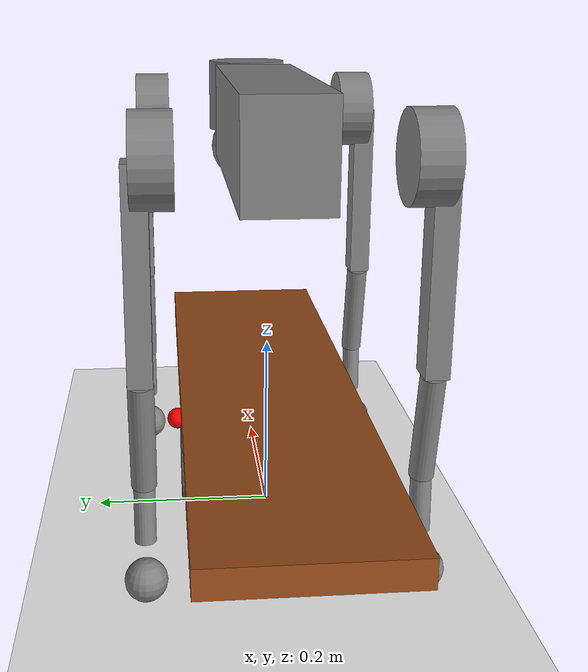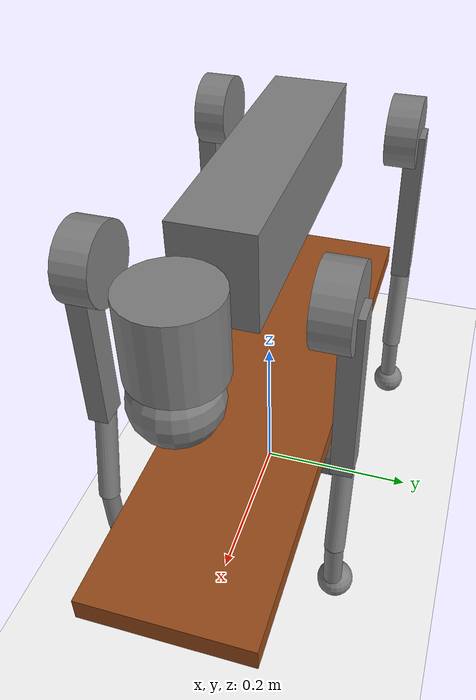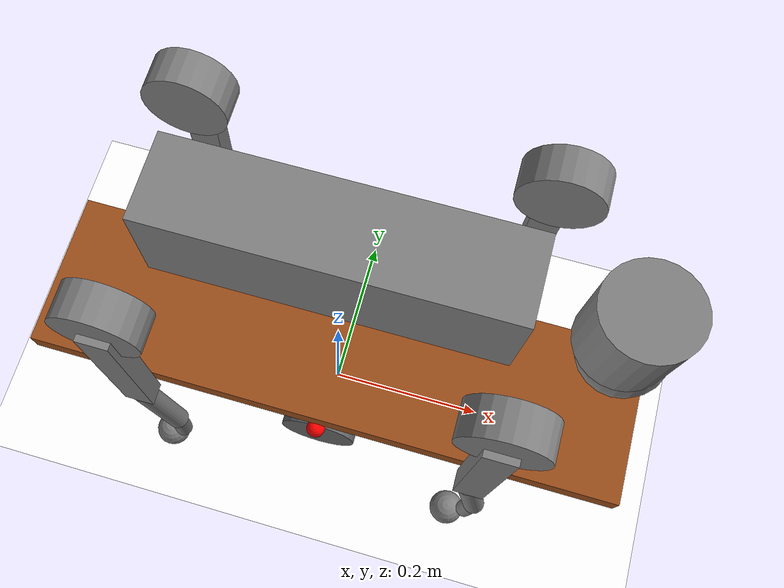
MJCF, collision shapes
<mujoco model="go2 bongo handstand scene">
  <!-- Go2 FIRST so robot qpos occupies indices 0-18 -->
  <include file="unitree_go2/go2.xml"/>
  <include file="bongo_board.xml"/>

  <statistic center="0 0 0.3" extent="1.0" meansize="0.04"/>

  <visual>
    <headlight diffuse=".8 .8 .8" ambient=".2 .2 .2" specular="1 1 1"/>
    <rgba force="1 0 0 1"/>
    <global azimuth="120" elevation="-20" offwidth="3840" offheight="2160"/>
    <map force="0.01"/>
    <scale forcewidth="0.3" contactwidth="0.5" contactheight="0.2"/>
    <quality shadowsize="8192"/>
  </visual>

  <asset>
    <texture type="skybox" builtin="gradient" rgb1="1 1 1" rgb2="1 1 1"
      width="800" height="800"/>
    <texture type="2d" name="groundplane" builtin="checker" mark="edge"
      rgb1="1 1 1" rgb2="1 1 1" markrgb="0 0 0" width="300" height="300"/>
    <material name="groundplane" texture="groundplane" texuniform="true"
      texrepeat="5 5" reflectance="0"/>
  </asset>

  <worldbody>
    <geom name="floor" size="0 0 0.01" type="plane" material="groundplane"
      contype="1" conaffinity="0" priority="1" friction="0.6" condim="3"/>
  </worldbody>

  <sensor>
    <!-- Go2 IMU sensors (same as go2_warp_scene_flat.xml) -->
    <gyro site="imu" name="gyro"/>
    <accelerometer site="imu" name="accelerometer"/>
    <framelinvel objtype="site" objname="imu" name="global_linvel"/>
    <frameangvel objtype="site" objname="imu" name="global_angvel"/>
    <velocimeter site="imu" name="local_linvel"/>
    <framezaxis objtype="site" objname="imu" name="upvector"/>
    <framexaxis objtype="site" objname="imu" name="forwardvector"/>

    <!-- Per-foot position sensors -->
    <framepos objtype="site" objname="FL_foot" name="FL_pos"
      reftype="site" refname="imu"/>
    <framepos objtype="site" objname="FR_foot" name="FR_pos"
      reftype="site" refname="imu"/>
    <framepos objtype="site" objname="RL_foot" name="RL_pos"
      reftype="site" refname="imu"/>
    <framepos objtype="site" objname="RR_foot" name="RR_pos"
      reftype="site" refname="imu"/>

    <!-- Per-foot linear velocity sensors -->
    <framelinvel objtype="site" objname="FL_foot" name="FL_global_linvel"/>
    <framelinvel objtype="site" objname="FR_foot" name="FR_global_linvel"/>
    <framelinvel objtype="site" objname="RL_foot" name="RL_global_linvel"/>
    <framelinvel objtype="site" objname="RR_foot" name="RR_global_linvel"/>

    <!-- Floor contact sensors (for rear legs if they touch ground) -->
    <contact name="FL_floor_found" geom1="FL" geom2="floor"
      reduce="mindist" num="1" data="found"/>
    <contact name="FR_floor_found" geom1="FR" geom2="floor"
      reduce="mindist" num="1" data="found"/>
    <contact name="RL_floor_found" geom1="RL" geom2="floor"
      reduce="mindist" num="1" data="found"/>
    <contact name="RR_floor_found" geom1="RR" geom2="floor"
      reduce="mindist" num="1" data="found"/>

    <!-- Board-floor contact (board edge touching ground = fail) -->
    <contact name="board_floor_found" geom1="board_top" geom2="floor"
      reduce="mindist" num="1" data="found"/>

    <!-- Torso-floor and torso-board contacts (head touching anything = fail) -->
    <contact name="torso_box_floor" geom1="torso_box" geom2="floor"
      reduce="mindist" num="1" data="found"/>
    <contact name="torso_cyl_floor" geom1="torso_cyl" geom2="floor"
      reduce="mindist" num="1" data="found"/>
    <contact name="torso_nose_floor" geom1="torso_nose" geom2="floor"
      reduce="mindist" num="1" data="found"/>
    <contact name="torso_box_board" geom1="torso_box" geom2="board_top"
      reduce="mindist" num="1" data="found"/>
    <contact name="torso_cyl_board" geom1="torso_cyl" geom2="board_top"
      reduce="mindist" num="1" data="found"/>
    <contact name="torso_nose_board" geom1="torso_nose" geom2="board_top"
      reduce="mindist" num="1" data="found"/>

    <!-- Front leg arm/calf on board = fail (only foot tips allowed) -->
    <contact name="FL_hip_board" geom1="FL_hip_col" geom2="board_top"
      reduce="mindist" num="1" data="found"/>
    <contact name="FL_thigh_board" geom1="FL_thigh_col" geom2="board_top"
      reduce="mindist" num="1" data="found"/>
    <contact name="FL_calf_upper_board" geom1="FL_calf_upper" geom2="board_top"
      reduce="mindist" num="1" data="found"/>
    <contact name="FL_calf_lower_board" geom1="FL_calf_lower" geom2="board_top"
      reduce="mindist" num="1" data="found"/>
    <contact name="FR_hip_board" geom1="FR_hip_col" geom2="board_top"
      reduce="mindist" num="1" data="found"/>
    <contact name="FR_thigh_board" geom1="FR_thigh_col" geom2="board_top"
      reduce="mindist" num="1" data="found"/>
    <contact name="FR_calf_upper_board" geom1="FR_calf_upper" geom2="board_top"
      reduce="mindist" num="1" data="found"/>
    <contact name="FR_calf_lower_board" geom1="FR_calf_lower" geom2="board_top"
      reduce="mindist" num="1" data="found"/>

    <!-- Front foot contact with BOARD (not floor) -->
    <contact name="FL_board_found" geom1="FL" geom2="board_top"
      reduce="mindist" num="1" data="found"/>
    <contact name="FR_board_found" geom1="FR" geom2="board_top"
      reduce="mindist" num="1" data="found"/>
  </sensor>

  <!-- Explicit contact pairs for per-pair friction DR.
       These bypass MuJoCo's max-combine rule — friction is used directly. -->
  <contact>
    <pair geom1="FL" geom2="board_top" condim="3"
          friction="0.8 0.8 0.005 0.001 0.001"/>
    <pair geom1="FR" geom2="board_top" condim="3"
          friction="0.8 0.8 0.005 0.001 0.001"/>
  </contact>

  <keyframe>
    <key name="handstand"
      qpos="0 0 0.597062 0.470531 -0.527826 0.527826 0.470531
            0.493386 -0.859650 -1.867154 -0.493386 -0.859650 -1.867154
            0.090111 1.547200 -2.039923 -0.090111 1.547200 -2.039923
            0 0 0.1318 1 0 0 0
            0 0"
      ctrl="0.493386 -0.859650 -1.867154 -0.493386 -0.859650 -1.867154
            0.090111 1.547200 -2.039923 -0.090111 1.547200 -2.039923"/>
  </keyframe>
</mujoco>

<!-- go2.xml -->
<mujoco model="go2">
  <compiler angle="radian" meshdir="assets" autolimits="true" />

  <option cone="elliptic" impratio="100" />

  <default>
    <default class="go2">
      <geom friction="0.4" margin="0.001" condim="1"/>
      <joint axis="0 1 0" damping="0.1" armature="0.01" frictionloss="0.2"/>
      <motor ctrlrange="-23.7 23.7"/>
      <default class="abduction">
        <joint axis="1 0 0" range="-1.0472 1.0472"/>
      </default>
      <default class="hip">
        <default class="front_hip">
          <joint range="-1.5708 3.4907"/>
        </default>
        <default class="back_hip">
          <joint range="-0.5236 4.5379"/>
        </default>
      </default>
      <default class="knee">
        <joint range="-2.7227 -0.83776"/>
        <motor ctrlrange="-45.43 45.43"/>
      </default>
      <default class="visual">
        <geom type="mesh" contype="0" conaffinity="0" group="2"/>
      </default>
      <default class="collision">
        <geom group="3"/>
        <default class="foot">
          <geom size="0.022" pos="-0.002 0 -0.213" priority="1" condim="6"
            friction="0.4 0.02 0.01"/>
        </default>
      </default>
    </default>
  </default>

  <asset>
    <material name="metal" rgba=".9 .95 .95 1" />
    <material name="black" rgba="0 0 0 1" />
    <material name="white" rgba="1 1 1 1" />
    <material name="gray" rgba="0.671705 0.692426 0.774270 1" />

    <mesh file="base_0.obj" />
    <mesh file="base_1.obj" />
    <mesh file="base_2.obj" />
    <mesh file="base_3.obj" />
    <mesh file="base_4.obj" />
    <mesh file="hip_0.obj" />
    <mesh file="hip_1.obj" />
    <mesh file="thigh_0.obj" />
    <mesh file="thigh_1.obj" />
    <mesh file="thigh_mirror_0.obj" />
    <mesh file="thigh_mirror_1.obj" />
    <mesh file="calf_0.obj" />
    <mesh file="calf_1.obj" />
    <mesh file="calf_mirror_0.obj" />
    <mesh file="calf_mirror_1.obj" />
    <mesh file="foot.obj" />
  </asset>

  <worldbody>
    <body name="base_link" pos="0 0 0.445" childclass="go2">
      <inertial pos="0.021112 0 -0.005366" quat="-0.000543471 0.713435 -0.00173769 0.700719"
        mass="6.921"
        diaginertia="0.107027 0.0980771 0.0244531" />
      <freejoint />
      <geom mesh="base_0" material="black" class="visual" />
      <geom mesh="base_1" material="black" class="visual" />
      <geom mesh="base_2" material="black" class="visual" />
      <geom mesh="base_3" material="white" class="visual" />
      <geom mesh="base_4" material="gray" class="visual" />
      <geom name="torso_box" size="0.1881 0.04675 0.057" type="box" class="collision" />
      <geom name="torso_cyl" size="0.05 0.045" pos="0.285 0 0.01" type="cylinder" class="collision" />
      <geom name="torso_nose" size="0.047" pos="0.293 0 -0.06" class="collision" />
      <site name="imu" pos="-0.02557 0 0.04232" />
      <body name="FL_hip" pos="0.1934 0.0465 0">
        <inertial pos="-0.0054 0.00194 -0.000105" quat="0.497014 0.499245 0.505462 0.498237"
          mass="0.678"
          diaginertia="0.00088403 0.000596003 0.000479967" />
        <joint name="FL_hip_joint" class="abduction" />
        <geom mesh="hip_0" material="metal" class="visual" />
        <geom mesh="hip_1" material="gray" class="visual" />
        <geom name="FL_hip_col" size="0.046 0.02" pos="0 0.08 0" quat="1 1 0 0" type="cylinder" class="collision" />
        <body name="FL_thigh" pos="0 0.0955 0">
          <inertial pos="-0.00374 -0.0223 -0.0327" quat="0.829533 0.0847635 -0.0200632 0.551623"
            mass="1.152"
            diaginertia="0.00594973 0.00584149 0.000878787" />
          <joint name="FL_thigh_joint" class="front_hip" />
          <geom mesh="thigh_0" material="metal" class="visual" />
          <geom mesh="thigh_1" material="gray" class="visual" />
          <geom name="FL_thigh_col" size="0.1065 0.01225 0.017" pos="0 0 -0.1065" quat="0.707107 0 0.707107 0"
            type="box" class="collision" />
          <body name="FL_calf" pos="0 0 -0.213">
            <inertial pos="0.00629595 -0.000622121 -0.141417"
              quat="0.710672 0.00154099 -0.00450087 0.703508"
              mass="0.241352" diaginertia="0.0014901 0.00146356 5.31397e-05" />
            <joint name="FL_calf_joint" class="knee" />
            <geom mesh="calf_0" material="gray" class="visual" />
            <geom mesh="calf_1" material="black" class="visual" />
            <geom name="FL_calf_upper" size="0.012 0.06" pos="0.008 0 -0.06" quat="0.994493 0 -0.104807 0"
              type="cylinder" class="collision" />
            <geom name="FL_calf_lower" size="0.011 0.0325" pos="0.02 0 -0.148" quat="0.999688 0 0.0249974 0"
              type="cylinder" class="collision" />
            <geom pos="0 0 -0.213" mesh="foot" class="visual" material="black" />
            <geom name="FL" class="foot" />
            <body name="FL_foot" pos="0 0 -0.213" />
            <site name="FL_foot" pos="-0.002 0 -0.213" group="1"/>
          </body>
        </body>
      </body>
      <body name="FR_hip" pos="0.1934 -0.0465 0">
        <inertial pos="-0.0054 -0.00194 -0.000105" quat="0.498237 0.505462 0.499245 0.497014"
          mass="0.678"
          diaginertia="0.00088403 0.000596003 0.000479967" />
        <joint name="FR_hip_joint" class="abduction" />
        <geom mesh="hip_0" material="metal" class="visual" quat="4.63268e-05 1 0 0" />
        <geom mesh="hip_1" material="gray" class="visual" quat="4.63268e-05 1 0 0" />
        <geom name="FR_hip_col" size="0.046 0.02" pos="0 -0.08 0" quat="0.707107 0.707107 0 0" type="cylinder"
          class="collision" />
        <body name="FR_thigh" pos="0 -0.0955 0">
          <inertial pos="-0.00374 0.0223 -0.0327" quat="0.551623 -0.0200632 0.0847635 0.829533"
            mass="1.152"
            diaginertia="0.00594973 0.00584149 0.000878787" />
          <joint name="FR_thigh_joint" class="front_hip" />
          <geom mesh="thigh_mirror_0" material="metal" class="visual" />
          <geom mesh="thigh_mirror_1" material="gray" class="visual" />
          <geom name="FR_thigh_col" size="0.1065 0.01225 0.017" pos="0 0 -0.1065" quat="0.707107 0 0.707107 0"
            type="box" class="collision" />
          <body name="FR_calf" pos="0 0 -0.213">
            <inertial pos="0.00629595 0.000622121 -0.141417"
              quat="0.703508 -0.00450087 0.00154099 0.710672"
              mass="0.241352" diaginertia="0.0014901 0.00146356 5.31397e-05" />
            <joint name="FR_calf_joint" class="knee" />
            <geom mesh="calf_mirror_0" material="gray" class="visual" />
            <geom mesh="calf_mirror_1" material="black" class="visual" />
            <geom name="FR_calf_upper" size="0.013 0.06" pos="0.01 0 -0.06" quat="0.995004 0 -0.0998334 0"
              type="cylinder" class="collision" />
            <geom name="FR_calf_lower" size="0.011 0.0325" pos="0.02 0 -0.148" quat="0.999688 0 0.0249974 0"
              type="cylinder" class="collision" />
            <geom pos="0 0 -0.213" mesh="foot" class="visual" material="black" />
            <geom name="FR" class="foot" />
            <body name="FR_foot" pos="0 0 -0.213" />
            <site name="FR_foot" pos="-0.002 0 -0.213" group="1"/>
          </body>
        </body>
      </body>
      <body name="RL_hip" pos="-0.1934 0.0465 0">
        <inertial pos="0.0054 0.00194 -0.000105" quat="0.505462 0.498237 0.497014 0.499245"
          mass="0.678"
          diaginertia="0.00088403 0.000596003 0.000479967" />
        <joint name="RL_hip_joint" class="abduction" />
        <geom mesh="hip_0" material="metal" class="visual" quat="4.63268e-05 0 1 0" />
        <geom mesh="hip_1" material="gray" class="visual" quat="4.63268e-05 0 1 0" />
        <geom size="0.046 0.02" pos="0 0.08 0" quat="0.707107 0.707107 0 0" type="cylinder"
          class="collision" />
        <body name="RL_thigh" pos="0 0.0955 0">
          <inertial pos="-0.00374 -0.0223 -0.0327" quat="0.829533 0.0847635 -0.0200632 0.551623"
            mass="1.152"
            diaginertia="0.00594973 0.00584149 0.000878787" />
          <joint name="RL_thigh_joint" class="back_hip" />
          <geom mesh="thigh_0" material="metal" class="visual" />
          <geom mesh="thigh_1" material="gray" class="visual" />
          <geom size="0.1065 0.01225 0.017" pos="0 0 -0.1065" quat="0.707107 0 0.707107 0"
            type="box" class="collision" />
          <body name="RL_calf" pos="0 0 -0.213">
            <inertial pos="0.00629595 -0.000622121 -0.141417"
              quat="0.710672 0.00154099 -0.00450087 0.703508"
              mass="0.241352" diaginertia="0.0014901 0.00146356 5.31397e-05" />
            <joint name="RL_calf_joint" class="knee" />
            <geom mesh="calf_0" material="gray" class="visual" />
            <geom mesh="calf_1" material="black" class="visual" />
            <geom size="0.013 0.06" pos="0.01 0 -0.06" quat="0.995004 0 -0.0998334 0"
              type="cylinder" class="collision" />
            <geom size="0.011 0.0325" pos="0.02 0 -0.148" quat="0.999688 0 0.0249974 0"
              type="cylinder" class="collision" />
            <geom pos="0 0 -0.213" mesh="foot" class="visual" material="black" />
            <geom name="RL" class="foot" />
            <body name="RL_foot" pos="0 0 -0.213" />
            <site name="RL_foot" pos="-0.002 0 -0.213" group="1"/>
          </body>
        </body>
      </body>
      <body name="RR_hip" pos="-0.1934 -0.0465 0">
        <inertial pos="0.0054 -0.00194 -0.000105" quat="0.499245 0.497014 0.498237 0.505462"
          mass="0.678"
          diaginertia="0.00088403 0.000596003 0.000479967" />
        <joint name="RR_hip_joint" class="abduction" />
        <geom mesh="hip_0" material="metal" class="visual"
          quat="2.14617e-09 4.63268e-05 4.63268e-05 -1" />
        <geom mesh="hip_1" material="gray" class="visual"
          quat="2.14617e-09 4.63268e-05 4.63268e-05 -1" />
        <geom size="0.046 0.02" pos="0 -0.08 0" quat="0.707107 0.707107 0 0" type="cylinder"
          class="collision" />
        <body name="RR_thigh" pos="0 -0.0955 0">
          <inertial pos="-0.00374 0.0223 -0.0327" quat="0.551623 -0.0200632 0.0847635 0.829533"
            mass="1.152"
            diaginertia="0.00594973 0.00584149 0.000878787" />
          <joint name="RR_thigh_joint" class="back_hip" />
          <geom mesh="thigh_mirror_0" material="metal" class="visual" />
          <geom mesh="thigh_mirror_1" material="gray" class="visual" />
          <geom size="0.1065 0.01225 0.017" pos="0 0 -0.1065" quat="0.707107 0 0.707107 0"
            type="box" class="collision" />
          <body name="RR_calf" pos="0 0 -0.213">
            <inertial pos="0.00629595 0.000622121 -0.141417"
              quat="0.703508 -0.00450087 0.00154099 0.710672"
              mass="0.241352" diaginertia="0.0014901 0.00146356 5.31397e-05" />
            <joint name="RR_calf_joint" class="knee" />
            <geom mesh="calf_mirror_0" material="gray" class="visual" />
            <geom mesh="calf_mirror_1" material="black" class="visual" />
            <geom size="0.013 0.06" pos="0.01 0 -0.06" quat="0.995004 0 -0.0998334 0"
              type="cylinder" class="collision" />
            <geom size="0.011 0.0325" pos="0.02 0 -0.148" quat="0.999688 0 0.0249974 0"
              type="cylinder" class="collision" />
            <geom pos="0 0 -0.213" mesh="foot" class="visual" material="black" />
            <geom name="RR" class="foot" />
            <body name="RR_foot" pos="0 0 -0.213" />
            <site name="RR_foot" pos="-0.002 0 -0.213" group="1"/>
          </body>
        </body>
      </body>
    </body>
  </worldbody>

  <actuator>
    <motor class="abduction" name="FR_hip" joint="FR_hip_joint" />
    <motor class="hip" name="FR_thigh" joint="FR_thigh_joint" />
    <motor class="knee" name="FR_calf" joint="FR_calf_joint" />
    <motor class="abduction" name="FL_hip" joint="FL_hip_joint" />
    <motor class="hip" name="FL_thigh" joint="FL_thigh_joint" />
    <motor class="knee" name="FL_calf" joint="FL_calf_joint" />
    <motor class="abduction" name="RR_hip" joint="RR_hip_joint" />
    <motor class="hip" name="RR_thigh" joint="RR_thigh_joint" />
    <motor class="knee" name="RR_calf" joint="RR_calf_joint" />
    <motor class="abduction" name="RL_hip" joint="RL_hip_joint" />
    <motor class="hip" name="RL_thigh" joint="RL_thigh_joint" />
    <motor class="knee" name="RL_calf" joint="RL_calf_joint" />
  </actuator>

  <sensor>
    <jointpos name="FR_hip_pos" joint="FR_hip_joint" />
    <jointpos name="FR_thigh_pos" joint="FR_thigh_joint" />
    <jointpos name="FR_calf_pos" joint="FR_calf_joint" />
    <jointpos name="FL_hip_pos" joint="FL_hip_joint" />
    <jointpos name="FL_thigh_pos" joint="FL_thigh_joint" />
    <jointpos name="FL_calf_pos" joint="FL_calf_joint" />
    <jointpos name="RR_hip_pos" joint="RR_hip_joint" />
    <jointpos name="RR_thigh_pos" joint="RR_thigh_joint" />
    <jointpos name="RR_calf_pos" joint="RR_calf_joint" />
    <jointpos name="RL_hip_pos" joint="RL_hip_joint" />
    <jointpos name="RL_thigh_pos" joint="RL_thigh_joint" />
    <jointpos name="RL_calf_pos" joint="RL_calf_joint" />

    <jointvel name="FR_hip_vel" joint="FR_hip_joint" />
    <jointvel name="FR_thigh_vel" joint="FR_thigh_joint" />
    <jointvel name="FR_calf_vel" joint="FR_calf_joint" />
    <jointvel name="FL_hip_vel" joint="FL_hip_joint" />
    <jointvel name="FL_thigh_vel" joint="FL_thigh_joint" />
    <jointvel name="FL_calf_vel" joint="FL_calf_joint" />
    <jointvel name="RR_hip_vel" joint="RR_hip_joint" />
    <jointvel name="RR_thigh_vel" joint="RR_thigh_joint" />
    <jointvel name="RR_calf_vel" joint="RR_calf_joint" />
    <jointvel name="RL_hip_vel" joint="RL_hip_joint" />
    <jointvel name="RL_thigh_vel" joint="RL_thigh_joint" />
    <jointvel name="RL_calf_vel" joint="RL_calf_joint" />

    <jointactuatorfrc name="FR_hip_torque" joint="FR_hip_joint" noise="0.01" />
    <jointactuatorfrc name="FR_thigh_torque" joint="FR_thigh_joint" noise="0.01" />
    <jointactuatorfrc name="FR_calf_torque" joint="FR_calf_joint" noise="0.01" />
    <jointactuatorfrc name="FL_hip_torque" joint="FL_hip_joint" noise="0.01" />
    <jointactuatorfrc name="FL_thigh_torque" joint="FL_thigh_joint" noise="0.01" />
    <jointactuatorfrc name="FL_calf_torque" joint="FL_calf_joint" noise="0.01" />
    <jointactuatorfrc name="RR_hip_torque" joint="RR_hip_joint" noise="0.01" />
    <jointactuatorfrc name="RR_thigh_torque" joint="RR_thigh_joint" noise="0.01" />
    <jointactuatorfrc name="RR_calf_torque" joint="RR_calf_joint" noise="0.01" />
    <jointactuatorfrc name="RL_hip_torque" joint="RL_hip_joint" noise="0.01" />
    <jointactuatorfrc name="RL_thigh_torque" joint="RL_thigh_joint" noise="0.01" />
    <jointactuatorfrc name="RL_calf_torque" joint="RL_calf_joint" noise="0.01" />

    <framequat name="imu_quat" objtype="site" objname="imu" />
    <gyro name="imu_gyro" site="imu" />
    <accelerometer name="imu_acc" site="imu" />

    <framepos name="frame_pos" objtype="site" objname="imu" />
    <framelinvel name="frame_vel" objtype="site" objname="imu" />
  </sensor>

  <keyframe>
    <key name="home" qpos="0 0 0.27 1 0 0 0 0 0.9 -1.8 0 0.9 -1.8 0 0.9 -1.8 0 0.9 -1.8"
      ctrl="0 0.9 -1.8 0 0.9 -1.8 0 0.9 -1.8 0 0.9 -1.8" />
  </keyframe>
</mujoco>

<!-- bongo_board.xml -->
<mujoco model="bongo_board">
  <worldbody>
    <body name="board" pos="0 0 0.1318">
      <!-- roller_radius=0.05842m (2.3"), board_half_thickness=0.015m -->
      <!-- board center z = 2*radius + half_thickness = 0.11684 + 0.015 -->
      <freejoint name="board_joint"/>
      <geom name="board_top" type="box" size="0.381 0.1016 0.015"
            mass="2.0" friction="0.8 0.005 0.001"
            rgba="0.6 0.3 0.1 1"/>

      <!-- Roller: child of board, slides along X (board long axis), spins around Y -->
      <body name="roller" pos="0 0 -0.07342">
        <!-- pos = -(board_half_thickness + roller_radius) = -(0.015 + 0.05842) -->
        <!-- Roller center is one radius below board bottom -->
        <joint name="roller_slide" type="slide" axis="1 0 0"
               range="-0.2286 0.2286" damping="0.1"/>
        <joint name="roller_spin" type="hinge" axis="0 1 0" damping="0.01"/>

        <!-- Main roller: 4.6" diam x 3" wide (contacts ground) -->
        <geom name="roller_main" type="cylinder"
              size="0.05842 0.0381"
              mass="0.7" friction="0.8 0.005 0.001"
              rgba="0.3 0.3 0.3 1"
              quat="0.7071 0.7071 0 0"/>
        <!-- size: radius=0.05842 (2.3"), half-length=0.0381 (1.5") -->

        <!-- Extensions: 3.9" diam x 8" wide (full width) -->
        <geom name="roller_ext" type="cylinder"
              size="0.04953 0.1016"
              mass="0.3" friction="0.8 0.005 0.001"
              rgba="0.4 0.4 0.4 1"
              quat="0.7071 0.7071 0 0"/>
        <!-- size: radius=0.04953 (1.95"), half-length=0.1016 (4") -->

        <!-- Visual-only tracker balls on extension faces at rim -->
        <geom name="roller_tracker_L" type="sphere" size="0.012"
              pos="0 0.105 0.04953"
              rgba="1 0 0 1"
              contype="0" conaffinity="0" group="2"/>
        <geom name="roller_tracker_R" type="sphere" size="0.012"
              pos="0 -0.105 0.04953"
              rgba="1 0 0 1"
              contype="0" conaffinity="0" group="2"/>
        <!-- pos: on extension faces (y=±half_length), at extension rim (z=0.0508) -->
      </body>
    </body>
  </worldbody>

  <equality>
    <!-- No-slip rolling: slide_pos = -radius * spin_angle -->
    <!-- Uses main roller radius (0.05842) for ground contact -->
    <joint joint1="roller_slide" joint2="roller_spin"
           polycoef="0 -0.05842 0 0 0"
           solref="0.001 1" solimp="0.99 0.999 0.001"/>
  </equality>
</mujoco>
